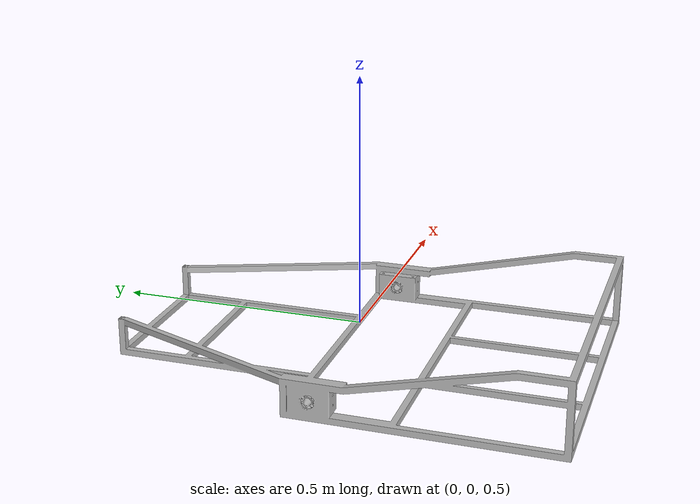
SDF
<?xml version='1.0'?>
<sdf version='1.4'>
<model name="MSI Rover">
  <static>0</static>
  <link name='Chassis'>
    <self_collide>1</self_collide>
    <pose>0.0000 0.0000 0.4720 0.0000 0.0000 0.0000</pose>
    <collision name='Chassis_Collision'>
      <pose>0.0000 -0.0120 0.0380 0.0000 0.0000 0.0000</pose>
      <geometry>
        <box>
          <size>0.6100 0.9300 0.1527</size>
        </box>
      </geometry>
    </collision>
    <visual name='Chassis_Visual'>
      <geometry>
        <mesh>
          <scale>0.0010 0.0010 0.0010</scale>
          <uri>model://msi_rover/meshes/Chassis.STL</uri>
        </mesh>
      </geometry>
    </visual>
    <inertial>
      <mass>7.259</mass>                                       <!-- Volume = 0.000902 m^3 -->
      <pose>0.0000 -0.0560 0.0013 0 0 0</pose>
      <inertia>
        <ixx> 0.54570278912</ixx>
        <ixy>-0.00003168874</ixy>
        <ixz>-0.00000141851</ixz>
        <iyy> 0.55866375000</iyy>
        <iyz> 0.02659627264</iyz>
        <izz> 1.07370025000</izz>
      </inertia>
    </inertial>
  </link>
</model>
</sdf>
